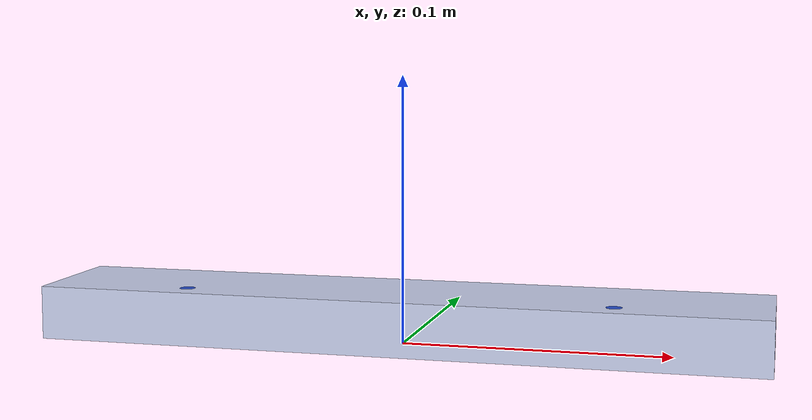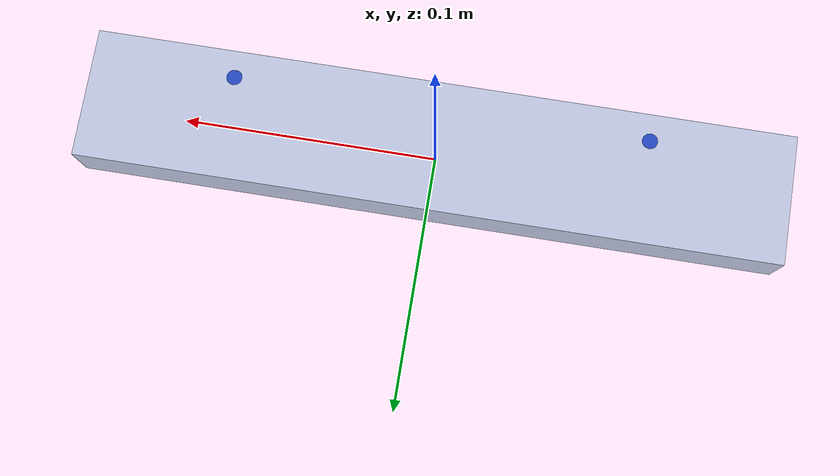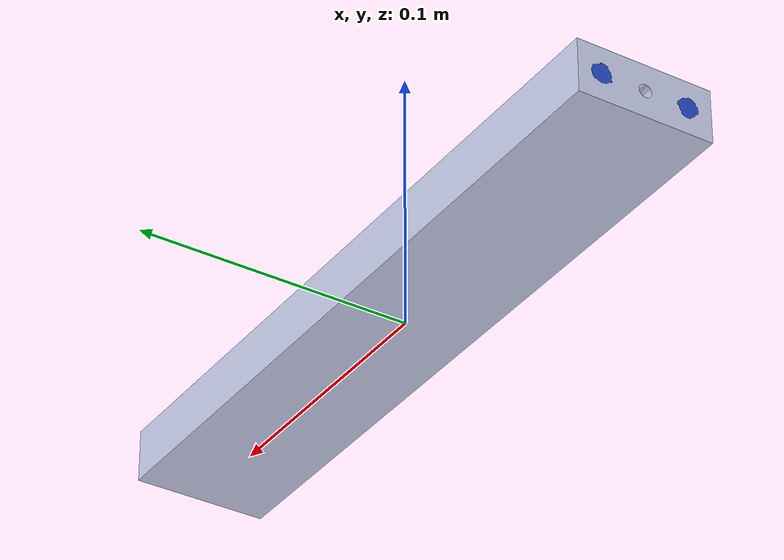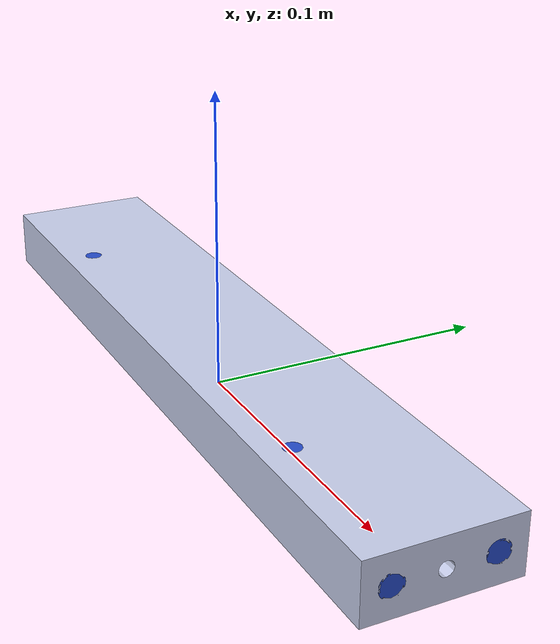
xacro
<?xml version="1.0"?>
<robot name="part3" xmlns:xacro="http://www.ros.org/wiki/xacro">
	<xacro:include filename="$(find object_description)/chair_urdf/chair_part3.SLDPRT.urdf"/>
	<xacro:include filename="$(find object_description)/chair_xacro_re/for_assemble_macro.xacro"/>

	<xacro:property name="x_offset" value="0.0"/>
	<xacro:property name="y_offset" value="0.0"/>
	<xacro:property name="z_offset" value="0.0"/>

	<xacro:hole_definition link_name="part3 hole 101350-1 1"
						   length="0.02"
						   radius="0.004"
						   x="${0.125 + x_offset}" y="${0.016 + y_offset}" z="${0.01 + z_offset}"
						   rx="0" ry="${-pi/2}" rz="0"
						   parent="chair part3.SLDPRT"/>

	<xacro:hole_definition link_name="part3 hole 101350-1 2"
						   length="0.02"
						   radius="0.004"
						   x="${0.125 + x_offset}" y="${-0.016 + y_offset}" z="${0.01 + z_offset}"
						   rx="0" ry="${-pi/2}" rz="0"
						   parent="chair part3.SLDPRT"/>

	<xacro:hole_definition link_name="part3 hole 101350-1 3"
						   length="0.02"
						   radius="0.004"
						   x="${-0.125 + x_offset}" y="${0.016 + y_offset}" z="${0.01 + z_offset}"
						   rx="0" ry="${pi/2}" rz="0"
						   parent="chair part3.SLDPRT"/>

	<xacro:hole_definition link_name="part3 hole 101350-1 4"
						   length="0.02"
						   radius="0.004"
						   x="${-0.125 + x_offset}" y="${-0.016 + y_offset}" z="${0.01 + z_offset}"
						   rx="0" ry="${pi/2}" rz="0"
						   parent="chair part3.SLDPRT"/>

	<xacro:hole_definition link_name="part3 hole 122620-1 5"
						   length="0.013"
						   radius="0.003"
						   x="${0.08 + x_offset}" y="${-0.0145 + y_offset}" z="${0.0135 + z_offset}"
						   rx="0" ry="${pi}" rz="0"
						   parent="chair part3.SLDPRT"/>

	<xacro:hole_definition link_name="part3 hole 122620-1 6"
						   length="0.013"
						   radius="0.003"
						   x="${-0.08 + x_offset}" y="${-0.0145 + y_offset}" z="${0.0135 + z_offset}"
						   rx="0" ry="${pi}" rz="0"
						   parent="chair part3.SLDPRT"/>

</robot>

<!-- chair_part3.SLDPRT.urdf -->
<robot
  name="chair part3.SLDPRT">
  <link
    name="chair part3.SLDPRT">
    <inertial>
      <origin
        xyz="4.9977E-19 4.02510000000006E-05 0.01"
        rpy="-1.5707963267949 0 0" />
      <mass
        value="0.26482" />
      <inertia
        ixx="6.4143E-05"
        ixy="1.6399E-20"
        ixz="2.6682E-20"
        iyy="0.0016227"
        iyz="-3.74120000000028E-08"
        izz="0.0015765" />
    </inertial>
    <visual>
      <origin
        xyz="0 0 0"
        rpy="0 0 0" />
      <geometry>
        <mesh
          filename="package://object_description/chair_meshes/chair part3.SLDPRT.STL" />
      </geometry>
      <material
        name="">
        <color
          rgba="0.79216 0.81961 0.93333 1" />
        <texture
          filename="package://object_description/textures/" />
      </material>
    </visual>
    <collision>
      <origin
        xyz="0 0 0"
        rpy="0 0 0" />
      <geometry>
        <mesh
          filename="package://object_description/chair_meshes/chair part3.SLDPRT.STL" />
      </geometry>
      <surface>
      <contact>
          <ode>
            <kp>1.0E+15</kp>
            <kd>1.0E+13</kd>
          </ode>
        </contact>
      </surface>
    </collision>
  </link>
  <gazebo reference="chair part3.SLDPRT">
    <material>Gazebo/White</material>
    <kp>100000.0</kp>
    <kd>1.0</kd>
    <mu1>100000</mu1>
    <mu2>100000</mu2>
    <maxVel>0</maxVel>
    <minDepth>0.000</minDepth>
  </gazebo>
</robot>

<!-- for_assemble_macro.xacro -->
<robot xmlns:xacro="http://wiki.ros.org/xacro">

	<xacro:macro name="hole_definition" params="link_name
												length radius
												x y z rx ry rz
												parent">
		<link name="${link_name}">
			<visual>
				<origin xyz="0 0 0" rpy="0 0 0"/>
				<geometry>
					<cylinder length="${length}" radius="${radius}"/>
				</geometry>
			</visual>
		</link>

		<joint name="${link_name} joint" type="fixed">
			<origin xyz="${x} ${y} ${z}" rpy="${rx} ${ry} ${rz}"/>
			<parent link="${parent}"/>
			<child link="${link_name}"/>
		</joint>

		<gazebo reference="${link_name}">
			<material>Gazebo/BlueTransparent</material>
		</gazebo>
	</xacro:macro>

	<xacro:macro name="shaft_definition" params="link_name
												length radius
												x y z rx ry rz
												parent">
		<link name="${link_name}">
			<visual>
				<origin xyz="0 0 0" rpy="0 0 0"/>
				<geometry>
					<cylinder length="${length}" radius="${radius}"/>
				</geometry>
			</visual>
		</link>

		<joint name="${link_name} joint" type="fixed">
			<origin xyz="${x} ${y} ${z}" rpy="${rx} ${ry} ${rz}"/>
			<parent link="${parent}"/>
			<child link="${link_name}"/>
		</joint>

		<gazebo reference="${link_name}">
			<material>Gazebo/RedTransparent</material>
		</gazebo>
	</xacro:macro>

	<xacro:macro name="surface_definition" params="link_name
												   box_x box_y box_z
												   x y z rx ry rz
												   parent">
		<link name="${link_name}">
			<visual>
				<origin xyz="0 0 0" rpy="0 0 0"/>
				<geometry>
					<box size="${box_x} ${box_y} ${box_z}"/>
				</geometry>
			</visual>
		</link>

		<joint name="${link_name} joint" type="fixed">
			<origin xyz="${x} ${y} ${z}" rpy="${rx} ${ry} ${rz}"/>
			<parent link="${parent}"/>
			<child link="${link_name}"/>
		</joint>

		<gazebo reference="${link_name}">
			<material>Gazebo/GreenTransparent</material>
		</gazebo>
	</xacro:macro>

</robot>
